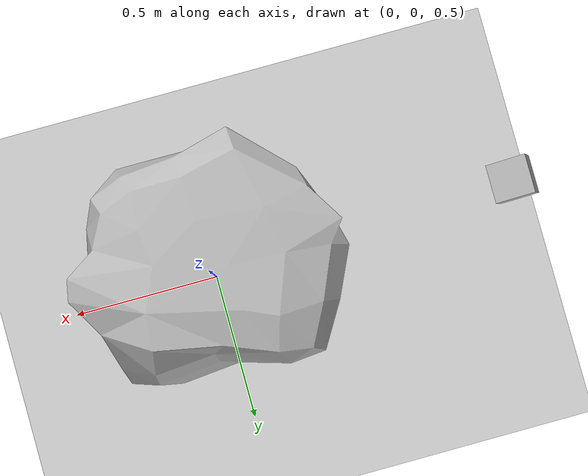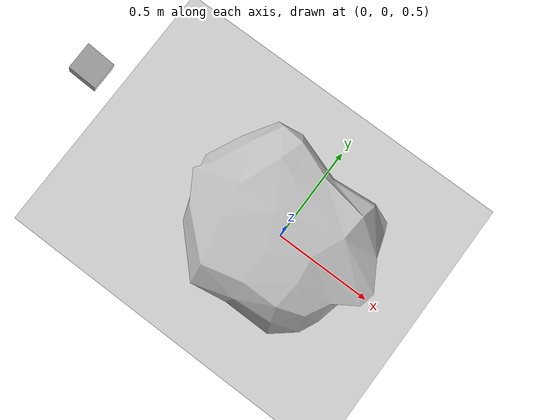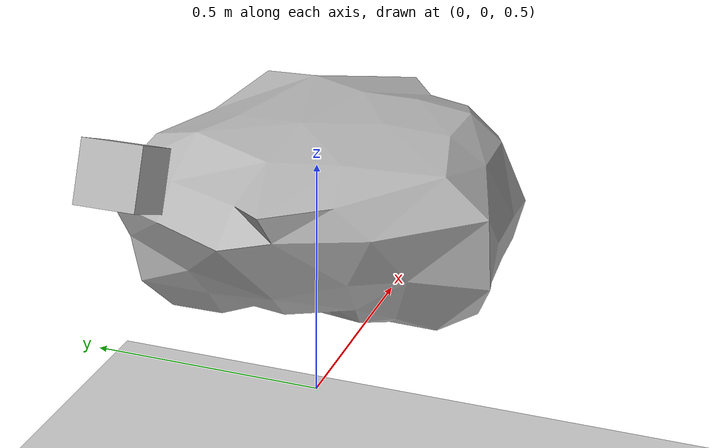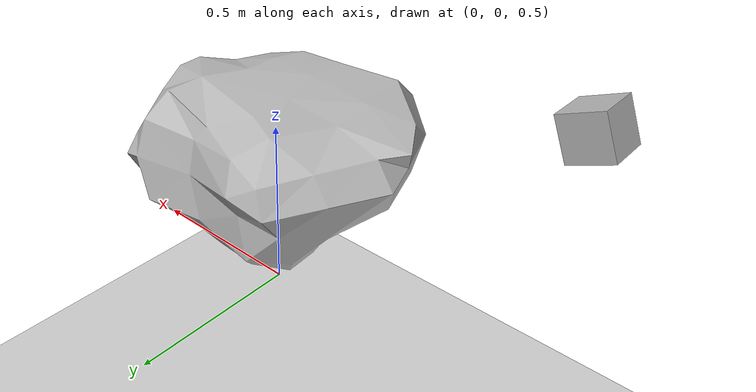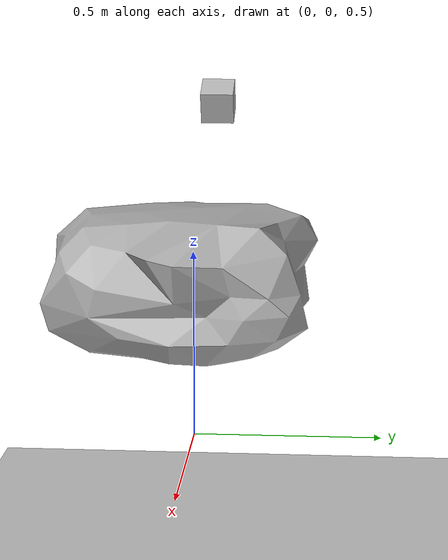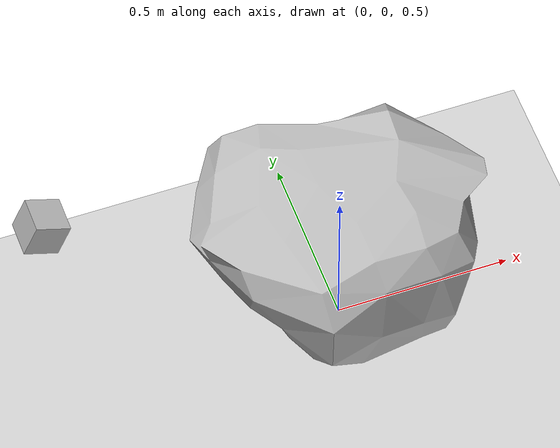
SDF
<?xml version="1.0"?>
<sdf version="1.6">
  <world name="default">
    <!-- GUI -->

		<gui>
			<camera name="gui_camera">
				<pose>-7.6 5.6 5.9 0.0 0.6 -0.85</pose>
			</camera>
		</gui>
		<!-- Lighting -->

    <include>
      <uri>model://sun</uri>
    </include>

		<!-- Ground -->

    <include>
      <uri>model://ground_plane</uri>
    </include>

    <include>
      <uri>model://duck</uri>
	<pose>0 0 0.8  0 0 1.57</pose>
	<static>True</static>
    </include>

	<!-- Duck-->

    <!-- Depth Camera -->
    <include>
      <uri>model://depth_camera</uri>
      <pose>-0.83 0.0 1.3 0.0 0.4 0.0</pose>
      <static>true</static>
    </include>
  </world>
</sdf>

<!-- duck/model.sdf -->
<sdf version="1.5">
  <model name="duck">
     <link name="link">
      <visual name="visual">
        <geometry>

		<mesh>
			<uri>model://duck/duck.dae </uri>
		</mesh>

        </geometry>
      </visual>
    </link>
    <plugin name="my_duck_plugin" filename="libmy_duck_plugin.so">
      <frame_id>/my_duck</frame_id>
      <duckpose_topic>/my_duck/pose</duckpose_topic>
      <duckpose_set_topic>/my_duck/pose/set</duckpose_set_topic>
    </plugin>

  </model>
</sdf>

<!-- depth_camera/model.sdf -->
<sdf version="1.5">
  <model name="depth_camera">

    <link name="link">
      <visual name="visual">
        <geometry>
          <box>
            <size>0.1 0.1 0.1</size>
          </box>
        </geometry>
      </visual>

      <sensor name="depth_camera" type="depth">
        <camera name="__default__">
          <horizontal_fov>1.047</horizontal_fov>
          <image>
            <width>320</width>
            <height>240</height>
          </image>
          <clip>
            <near>0.1</near>
            <far>10</far>
          </clip>
        </camera>
        <always_on>1</always_on>
        <update_rate>10</update_rate>
        <visualize>true</visualize>

        <plugin name="my_depth_plugin" filename="libmy_depth_plugin.so">
          <depth_topic>/my_depth_camera/depth</depth_topic>
          <rgb_topic>/my_depth_camera/rgb</rgb_topic>
        </plugin>
      </sensor>

    </link>

    <plugin name="my_depth_plugin" filename="libmy_pose_plugin.so">
      <frame_id>/my_depth_camera</frame_id>
      <pose_topic>/my_depth_camera/pose</pose_topic>
      <pose_set_topic>/my_depth_camera/pose/set</pose_set_topic>
      <pose_test_topic>/my_depth_camera/poseinobj</pose_test_topic>
    </plugin>

  </model>
</sdf>
